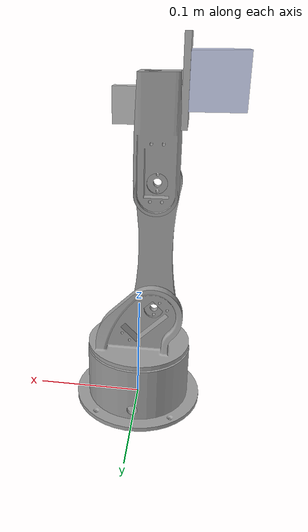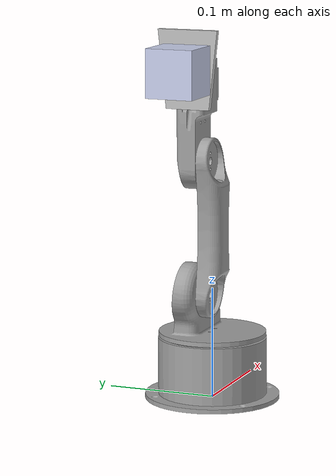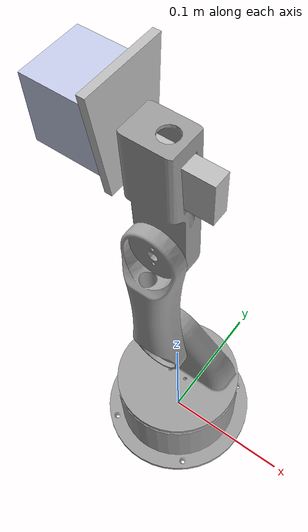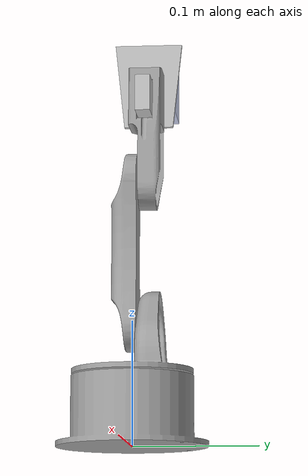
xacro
<?xml version="1.0"?>
<robot xmlns:xacro="http://www.ros.org/wiki/xacro" name="robotic_arm">
    <xacro:arg name="initial_positions_file" default="initial_positions.yaml" />

    <!-- Import robotic_arm urdf file -->
    <xacro:include filename="$(find robotic_arm)/urdf/Robot_Arm.xacro" />

    <!-- Import control_xacro -->
    <xacro:include filename="robotic_arm.ros2_control.xacro" />

    <xacro:robotic_arm_ros2_control name="FakeSystem" initial_positions_file="$(arg initial_positions_file)"/>

</robot>

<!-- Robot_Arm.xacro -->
<robot name="robotic_arm" xmlns:xacro="http:///www.ros.org/wiki/xacro">
  <link
    name="base_link">
    <inertial>
      <origin
        xyz="-7.5348E-09 -0.00013761 0.017995"
        rpy="0 0 0" />
      <mass
        value="0.10728" />
      <inertia
        ixx="0.00014427"
        ixy="6.2688E-11"
        ixz="-2.1919E-11"
        iyy="0.00014507"
        iyz="-5.8994E-08"
        izz="0.00022021" />
    </inertial>
    <visual>
      <origin
        xyz="0 0 0"
        rpy="0 0 0" />
      <geometry>
        <mesh
          filename="file:///home/khaled/ros2_ws/src/robotic_arm/meshes/base_link.STL" />
      </geometry>
      <material
        name="">
        <color
          rgba="0.62745 0.62745 0.62745 1" />
      </material>

    </visual>
    <collision>
      <origin
        xyz="0 0 0"
        rpy="0 0 0" />
      <geometry>
        <mesh
          filename="file:///home/khaled/ros2_ws/src/robotic_arm/meshes/base_link.STL" />
      </geometry>
    </collision>
  </link>
  <link
    name="waist_Link">
    <inertial>
      <origin
        xyz="0.0074946 0.019383 -0.0014293"
        rpy="0 0 0" />
      <mass
        value="0.073648" />
      <inertia
        ixx="6.7954E-05"
        ixy="-6.43E-06"
        ixz="2.5439E-07"
        iyy="6.0133E-05"
        iyz="6.7307E-06"
        izz="5.0282E-05" />
    </inertial>
    <visual>
      <origin
        xyz="0 0 0"
        rpy="0 0 0" />
      <geometry>
        <mesh
          filename="file:///home/khaled/ros2_ws/src/robotic_arm/meshes/waist_Link.STL" />
      </geometry>
      <material
        name="">
        <color
          rgba="0.62745 0.62745 0.62745 1" />
      </material>
    </visual>
    <collision>
      <origin
        xyz="0 0 0"
        rpy="0 0 0" />
      <geometry>
        <mesh
          filename="file:///home/khaled/ros2_ws/src/robotic_arm/meshes/waist_Link.STL" />
      </geometry>
    </collision>
  </link>
  <joint
    name="base_waist_joint"
    type="revolute">
    <dynamics damping="1.0" friction="1.0"/>
    <origin
      xyz="0 0 0.0575"
      rpy="1.5708 0 1.5708" />
    <parent
      link="base_link" />
    <child
      link="waist_Link" />
    <axis
      xyz="0 1 0" />
    <limit
      lower="-1.571"
      upper="1.571"
      effort="10"
      velocity="3" />
  </joint>
  <link
    name="arm_Link">
    <inertial>
      <origin
        xyz="1.0586E-07 0.06 -0.0049709"
        rpy="0 0 0" />
      <mass
        value="0.064059" />
      <inertia
        ixx="0.00010375"
        ixy="3.5389E-10"
        ixz="1.0836E-10"
        iyy="9.2286E-06"
        iyz="-4.5873E-12"
        izz="0.00010863" />
    </inertial>
    <visual>
      <origin
        xyz="0 0 0"
        rpy="0 0 0" />
      <geometry>
        <mesh
          filename="file:///home/khaled/ros2_ws/src/robotic_arm/meshes/arm_Link.STL" />
      </geometry>
      <material
        name="">
        <color
          rgba="0.62745 0.62745 0.62745 1" />
      </material>
    </visual>
    <collision>
      <origin
        xyz="0 0 0"
        rpy="0 0 0" />
      <geometry>
        <mesh
          filename="file:///home/khaled/ros2_ws/src/robotic_arm/meshes/arm_Link.STL" />
      </geometry>
    </collision>
  </link>
  <joint
    name="waist_arm_joint"
    type="revolute">
    <dynamics damping="1.0" friction="1.0"/>
    <origin
      xyz="0 0.04028 -0.01391"
      rpy="0 1.5708 0" />
    <parent
      link="waist_Link" />
    <child
      link="arm_Link" />
    <axis
      xyz="0 0 1" />
    <limit
      lower="-1.571"
      upper="1.571"
      effort="10"
      velocity="3" />
  </joint>
  <link
    name="end_Link">
    <inertial>
      <origin
        xyz="0.041711 3.1659E-05 -0.00972"
        rpy="0 0 0" />
      <mass
        value="0.047098" />
      <inertia
        ixx="8.7227E-06"
        ixy="-6.9702E-08"
        ixz="-4.0365E-07"
        iyy="5.1401E-05"
        iyz="-1.8365E-10"
        izz="5.4665E-05" />
    </inertial>
    <visual>
      <origin
        xyz="0 0 0"
        rpy="0 0 0" />
      <geometry>
        <mesh
          filename="file:///home/khaled/ros2_ws/src/robotic_arm/meshes/end_Link.STL" />
      </geometry>
      <material
        name="">
        <color
          rgba="0.62745 0.62745 0.62745 1" />
      </material>
    </visual>
    <collision>
      <origin
        xyz="0 0 0"
        rpy="0 0 0" />
      <geometry>
        <mesh
          filename="file:///home/khaled/ros2_ws/src/robotic_arm/meshes/end_Link.STL" />
      </geometry>
    </collision>
  </link>
  <joint
    name="arm_end_joint"
    type="revolute">
    <dynamics damping="1.0" friction="1.0"/>
    <origin
      xyz="0 0.12 0"
      rpy="3.1416 0 1.5708" />
    <parent
      link="arm_Link" />
    <child
      link="end_Link" />
    <axis
      xyz="0 0 -1" />
    <limit
      lower="-1.571"
      upper="1.571"
      effort="10"
      velocity="3" />
  </joint>
  <link
    name="support_Link">
    <inertial>
      <origin
        xyz="0.0096128 0.01329 0.0015"
        rpy="0 0 0" />
      <mass
        value="0.032654" />
      <inertia
        ixx="8.6378E-06"
        ixy="-1.6109E-07"
        ixz="3.8781E-22"
        iyy="1.0677E-05"
        iyz="-1.0792E-21"
        izz="1.2956E-05" />
    </inertial>
    <visual>
      <origin
        xyz="0 0 0"
        rpy="0 0 0" />
      <geometry>
        <mesh
          filename="file:///home/khaled/ros2_ws/src/robotic_arm/meshes/support_Link.STL" />
      </geometry>
      <material
        name="">
        <color
          rgba="0.75294 0.75294 0.75294 1" />
      </material>
    </visual>
    <collision>
      <origin
        xyz="0 0 0"
        rpy="0 0 0" />
      <geometry>
        <mesh
          filename="file:///home/khaled/ros2_ws/src/robotic_arm/meshes/support_Link.STL" />
      </geometry>
    </collision>
  </link>
  <joint
    name="end_support_joint"
    type="fixed">
    <dynamics damping="1.0" friction="1.0"/>
    <origin
      xyz="0.065057 -0.0082418 -0.011"
      rpy="0 0 0" />
    <parent
      link="end_Link" />
    <child
      link="support_Link" />
    <axis
      xyz="0 0 0" />
  </joint>

  <link
    name="cam_Link">
    <inertial>
      <origin
        xyz="0.0215 0.0215 0.0215"
        rpy="0 0 0" />
      <mass
        value="0.079507" />
      <inertia
        ixx="2.4501E-05"
        ixy="-1.8211E-21"
        ixz="-5.7909E-22"
        iyy="2.4501E-05"
        iyz="-2.7946E-23"
        izz="2.4501E-05" />
    </inertial>
    <visual>
      <origin
        xyz="0 0 0"
        rpy="0 0 0" />
      <geometry>
        <mesh
          filename="file:///home/khaled/ros2_ws/src/robotic_arm/meshes/cam_Link.STL" />
      </geometry>
      <material
        name="">
        <color
          rgba="0.79216 0.81961 0.93333 1" />
      </material>
    </visual>
    <collision>
      <origin
        xyz="0 0 0"
        rpy="0 0 0" />
      <geometry>
        <mesh
          filename="file:///home/khaled/ros2_ws/src/robotic_arm/meshes/cam_Link.STL" />
      </geometry>
    </collision>
  </link>
  <joint
    name="support_cam_joint"
    type="fixed">
    <dynamics damping="1.0" friction="1.0"/>
    <origin
      xyz="-0.0028878 0.074628 0.023"
      rpy="-1.5708 0 -1.5708" />
    <parent
      link="support_Link" />
    <child
      link="cam_Link" />
    <axis
      xyz="0 0 0" />
  </joint>

  <!-- Robot Tip -->
  <link name="tip_link"/>
  <joint name="support_tip_joint" type="fixed">
    <parent link="support_Link"/>
    <child link="tip_link"/>
    <origin xyz="0.025 0.004 0.001" rpy="0 0 0"/>
  </joint>

  <xacro:macro name="control" params="joint">
    <transmission name="${joint}_transmission">
      <type>transmission_interface/SimpleTransmission</type>
      <joint name="${joint}">
        <hardwareInterface>position</hardwareInterface>
      </joint>
      <actuator name="${joint}_motor">
        <hardwareInterface>position</hardwareInterface>
        <mechanicalReduction>1</mechanicalReduction>
      </actuator>
    </transmission>
  </xacro:macro>

<!-- Usage -->
  <xacro:control joint="base_waist_joint"/>
  <xacro:control joint="waist_arm_joint"/>
  <xacro:control joint="arm_end_joint"/>
  <xacro:control joint="end_support_joint"/>
  <xacro:control joint="support_cam_joint"/>

  <gazebo>
    <plugin name="gazebo_ros2_control" filename="libgazebo_ros2_control.so">
      <robotNamespace>/robotic_arm</robotNamespace>
      <parameters>$(find moveit_robotic_arm)/config/ros2_controllers.yaml</parameters>
    </plugin>
  </gazebo>

  <ros2_control name="controller_manager" type="system">
    <hardware>
      <plugin>gazebo_ros2_control/GazeboSystem</plugin>
    </hardware>

    <joint>
      <name>base_waist_joint</name>
      <command_interface>position</command_interface>
      <state_interface>position</state_interface>
      <state_interface>velocity</state_interface>
    </joint>
    <joint>
      <name>waist_arm_joint</name>
      <command_interface>position</command_interface>
      <state_interface>position</state_interface>
      <state_interface>velocity</state_interface>
    </joint>
    <joint>
      <name>arm_end_joint</name>
      <command_interface>position</command_interface>
      <state_interface>position</state_interface>
      <state_interface>velocity</state_interface>
    </joint>
    <joint>
      <name>end_support_joint</name>
      <command_interface>position</command_interface>
      <state_interface>position</state_interface>
      <state_interface>velocity</state_interface>
    </joint>
    <joint>
      <name>support_cam_joint</name>
      <command_interface>position</command_interface>
      <state_interface>position</state_interface>
      <state_interface>velocity</state_interface>
    </joint>
  </ros2_control>
</robot>
